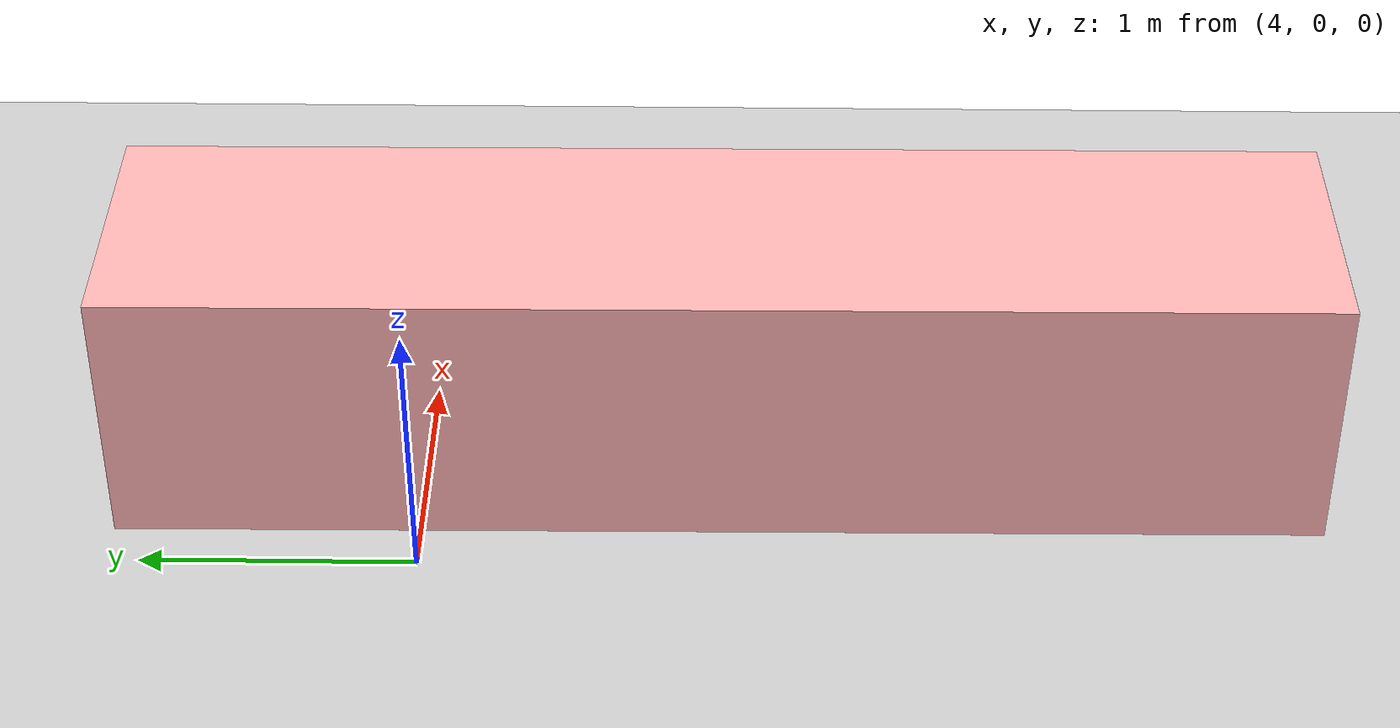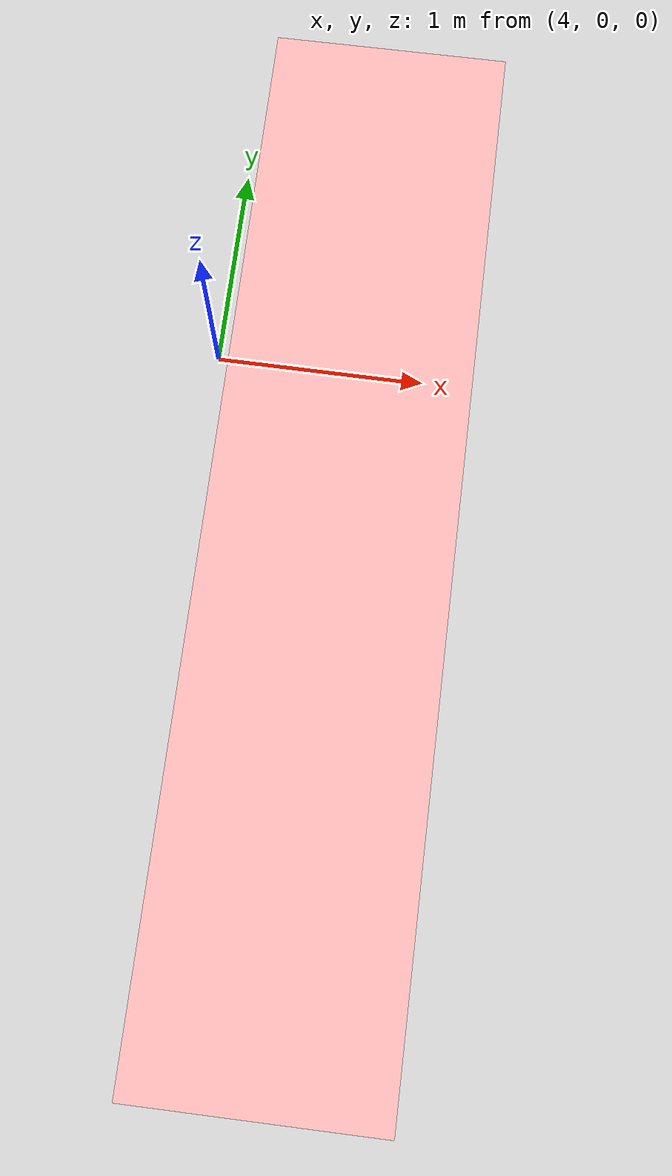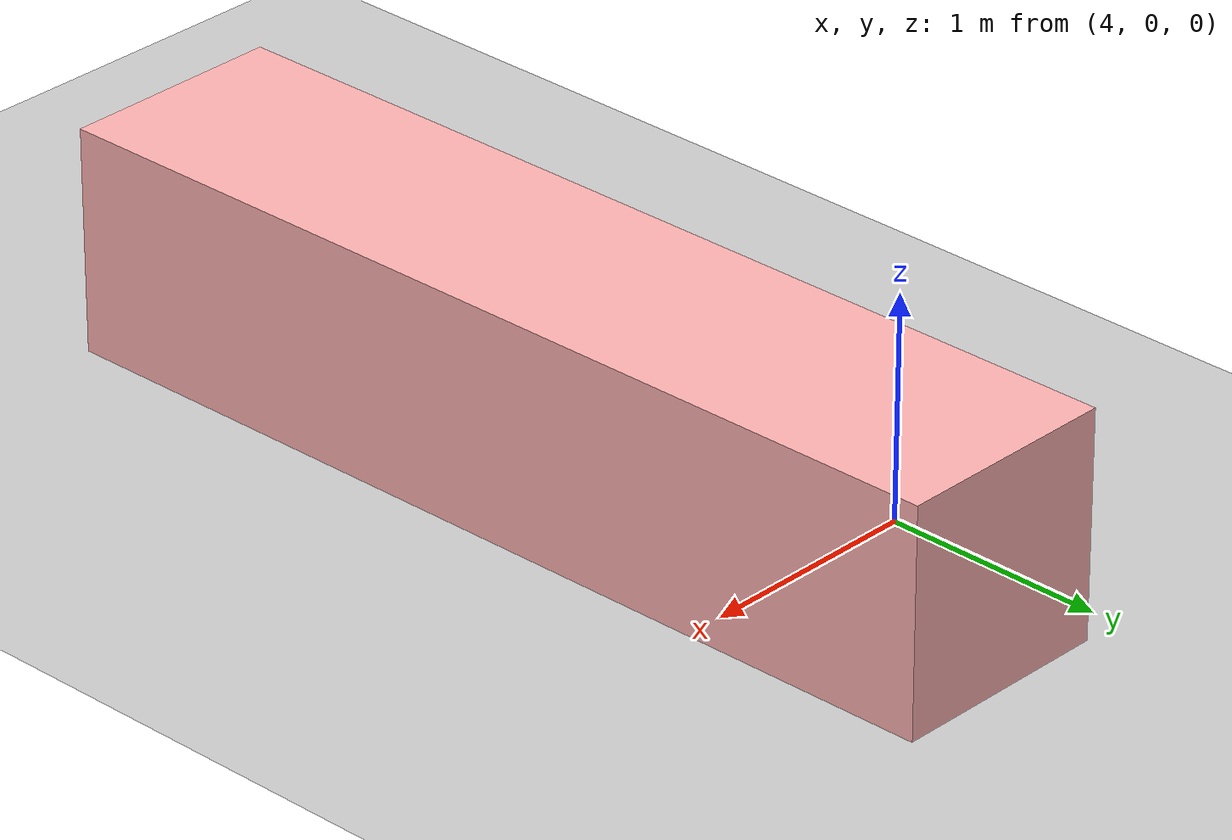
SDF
<sdf version="1.6">
 <world name="default">
  <model name="ground_plane">
   <static>1</static>
   <link name="link">
    <collision name="collision">
     <geometry><plane><normal>0 0 1</normal><size>100 100</size></plane></geometry>
     <surface><friction><ode><mu>100</mu><mu2>50</mu2></ode></friction></surface>
    </collision>
    <visual name="visual">
     <cast_shadows>0</cast_shadows>
     <geometry><plane><normal>0 0 1</normal><size>100 100</size></plane></geometry>
     <material>
      <script><uri>file://media/materials/scripts/gazebo.material</uri><name>Gazebo/Grey</name></script>
     </material>
    </visual>
   </link>
  </model>
  <model name="unit_box_0_clone_0_0_clone_clone_0_clone_clone_clone_0_clone_clone_0_clone_0_0">
   <link name="link">
    <inertial>
     <mass>1</mass>
     <inertia>
      <ixx>0.166667</ixx>
      <ixy>0</ixy>
      <ixz>0</ixz>
      <iyy>0.166667</iyy>
      <iyz>0</iyz>
      <izz>0.166667</izz>
     </inertia>
    </inertial>
    <visual name="visual">
     <geometry><box><size>1 4.38827 1</size></box></geometry>
     <material>
      <script><name>Gazebo/Grey</name><uri>file://media/materials/scripts/gazebo.material</uri></script>
      <ambient>0.6 0.3 0.3 1</ambient>
      <diffuse>1 0.7 0.7 1</diffuse>
      <specular>0.31 0.01 0.01 1</specular>
      <emissive>0.7 0.7 0.7 1</emissive>
      <shader type="vertex"><normal_map>__default__</normal_map></shader>
     </material>
    </visual>
    <collision name="collision">
     <geometry><box><size>1 4.38827 1</size></box></geometry>
     <surface>
      <friction>
       <ode><mu>1</mu><mu2>1</mu2><fdir1>0 0 0</fdir1><slip1>0</slip1><slip2>0</slip2></ode>
       <torsional>
        <coefficient>1</coefficient>
        <patch_radius>0</patch_radius>
        <surface_radius>0</surface_radius>
        <use_patch_radius>1</use_patch_radius>
        <ode><slip>0</slip></ode>
       </torsional>
      </friction>
      <bounce><restitution_coefficient>0</restitution_coefficient><threshold>1e+06</threshold></bounce>
      <contact>
       <collide_without_contact>0</collide_without_contact>
       <collide_without_contact_bitmask>1</collide_without_contact_bitmask>
       <collide_bitmask>1</collide_bitmask>
       <ode>
        <soft_cfm>0</soft_cfm>
        <soft_erp>0.2</soft_erp>
        <kp>1e+13</kp>
        <kd>1</kd>
        <max_vel>0.01</max_vel>
        <min_depth>0</min_depth>
       </ode>
       <bullet>
        <split_impulse>1</split_impulse>
        <split_impulse_penetration_threshold>-0.01</split_impulse_penetration_threshold>
        <soft_cfm>0</soft_cfm>
        <soft_erp>0.2</soft_erp>
        <kp>1e+13</kp>
        <kd>1</kd>
       </bullet>
      </contact>
     </surface>
    </collision>
   </link>
   <static>1</static>
   <pose>4.68681 -1.07681 0.49976 -3.14102 -0 0.006143</pose>
  </model>
 </world>
</sdf>
